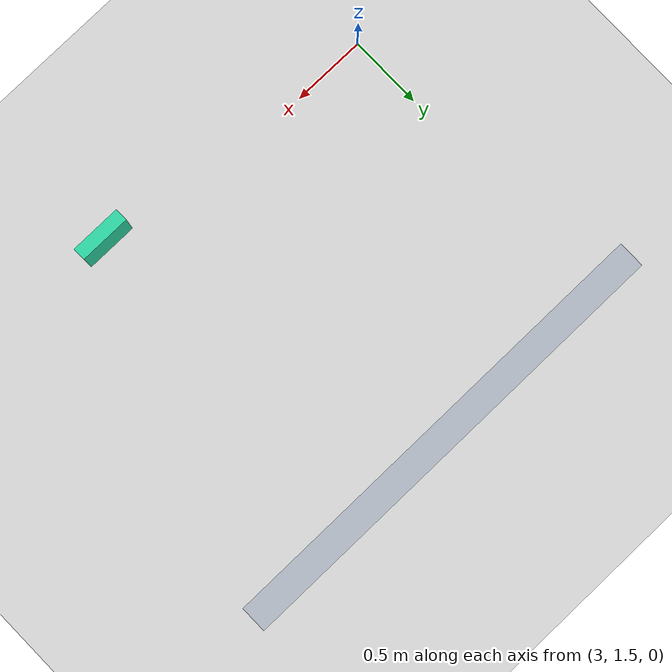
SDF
<sdf version="1.9">
 <world name="default">
  <model name="ground_plane">
   <static>true</static>
   <pose>4.95 0 -0.05 0 0 0</pose>
   <link name="body">
    <collision name="collision"><geometry><box><size>13.9 12 0.1</size></box></geometry></collision>
    <visual name="visual">
     <geometry><box><size>13.9 12 0.1</size></box></geometry>
     <material><ambient>0.8 0.8 0.8 1</ambient><diffuse>0.8 0.8 0.8 1</diffuse></material>
    </visual>
   </link>
  </model>
  <model name="room_end_1_1">
   <static>true</static>
   <pose>4.45 3.5999999999999996 1.1 0 0 0</pose>
   <link name="body">
    <collision name="collision"><geometry><box><size>2.6 0.15 2.2</size></box></geometry></collision>
    <visual name="visual">
     <geometry><box><size>2.6 0.15 2.2</size></box></geometry>
     <material><ambient>0.65 0.68 0.72 1</ambient><diffuse>0.65 0.68 0.72 1</diffuse></material>
    </visual>
   </link>
  </model>
  <model name="r3geo_base_r007_left_1_entrance_sign">
   <static>true</static>
   <pose>4.98 1.5 1.05 0 0 0</pose>
   <link name="body">
    <visual name="visual">
     <geometry><box><size>0.32 0.08 0.32</size></box></geometry>
     <material><ambient>0.16 0.8 0.61 1</ambient><diffuse>0.16 0.8 0.61 1</diffuse></material>
    </visual>
   </link>
  </model>
 </world>
</sdf>
